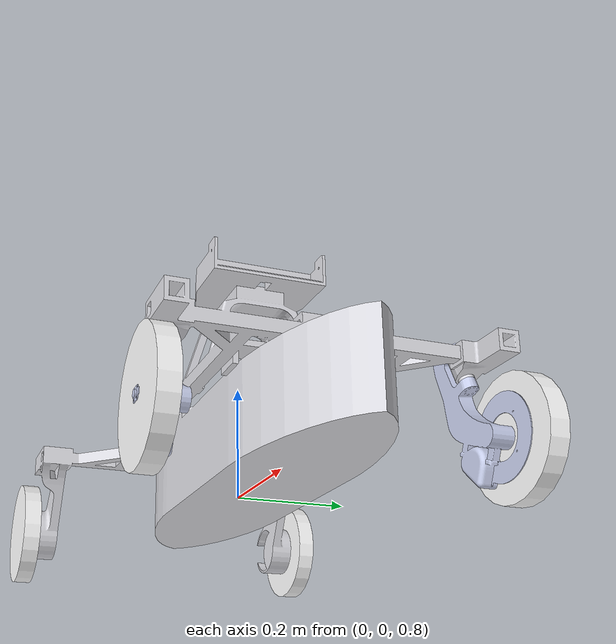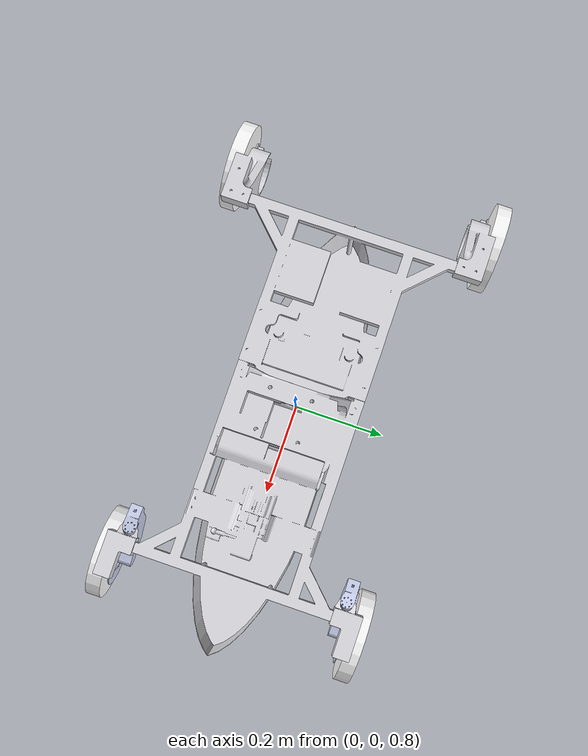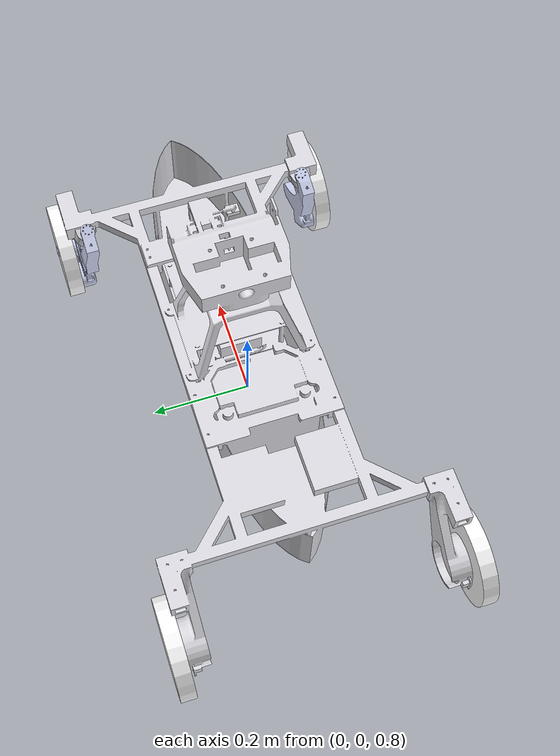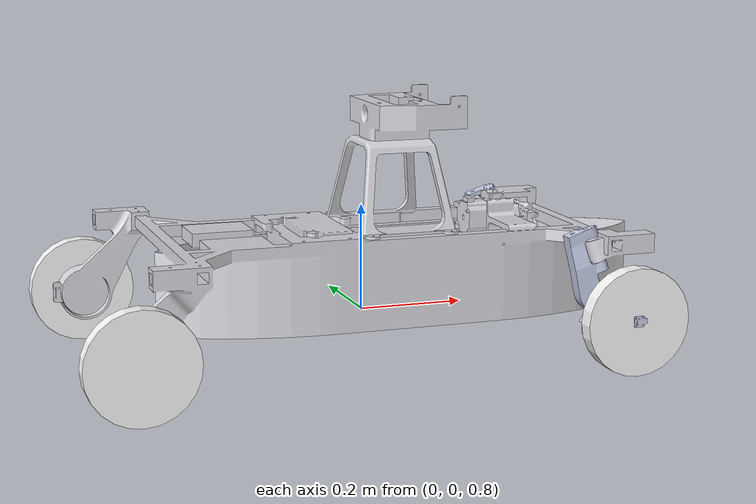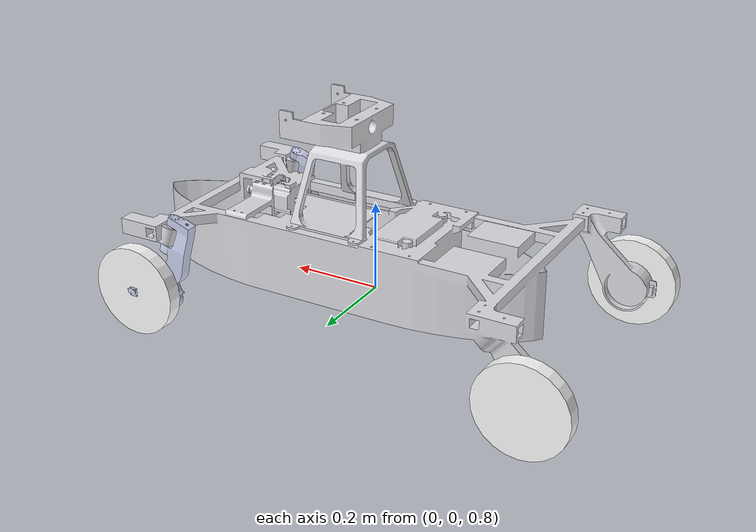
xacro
<?xml version="1.0" encoding="utf-8"?>
<robot xmlns:xacro="http://www.ros.org/wiki/xacro"
  name="asc">
  <gazebo>
    <plugin name="gazebo_ros_control" filename="libgazebo_ros_control.so">
      <robotNamespace>/</robotNamespace>
      <robotSimType>gazebo_ros_control/DefaultRobotHWSim</robotSimType>
      <legacyModeNS>false</legacyModeNS>
    </plugin>
  </gazebo>
  <xacro:include filename="macro_link.urdf.xacro"/>
  <xacro:include filename="macro_wheel.urdf.xacro"/>

  <xacro:property name="wheel_length" value="0.032"/>
  <xacro:property name="wheel_radius" value="0.1"/>
  <xacro:property name="wheel_parent" value="frame_link"/>

  <link name="base_link"/>
  <joint name="base_link_to_frame" type="fixed">
    <origin xyz="0 0 0.7" rpy="0 0 0"/>
    <parent link="base_link"/>
    <child link="frame_link"/>
  </joint>

  <link name="frame_link">
    <inertial>
      <origin xyz="-0.191135074026536 0.00147037627768998 -0.144166350352701" rpy="0 0 0"/>
      <mass value="54.6845003989778"/>
      <inertia ixx="0.830289508168532" ixy="-7.44170925374484E-07" ixz="-0.168031775231281" iyy="1.89493024064907" iyz="3.6787232173372E-07" izz="1.80540947379668"/>
    </inertial>
    <visual>
      <origin xyz="0 0 0" rpy="0 0 0"/>
      <geometry>
        <mesh filename="package://asc_urdf/meshes/base_link.STL" />
      </geometry>
      <material name="">
        <color rgba="0.866666666666667 0.866666666666667 0.890196078431372 1"/>
      </material>
    </visual>
  </link>

  <xacro:asc_wheel_front wheel_prefix="right"
  link_parent="${wheel_parent}" wheel_length="${wheel_length}" wheel_radius="${wheel_radius}" >
    <origin
      xyz="0.35635 -0.23074 0.27672"
      rpy="0.29046 -0.12882 -1.6092" />
    <origin
      xyz="0.024 0.023741 -0.18704"
      rpy="0.13981 0.28531 1.6105" />
    <axis
      xyz="5.3677E-05 1 0.00055924" />
  </xacro:asc_wheel_front>

  <xacro:asc_wheel_front wheel_prefix="left"
  link_parent="${wheel_parent}" wheel_length="${wheel_length}" wheel_radius="${wheel_radius}" >
    <origin
      xyz="0.35635 0.22966 0.27672"
      rpy="0.28907 0.00024223 -1.5707" />
    <origin
      xyz="-0.05 0.023546 -0.17951"
      rpy="1.5963E-05 0.28907 1.5707" />
    <axis
      xyz="5.3677E-05 -1 0.00055924" />
  </xacro:asc_wheel_front>

  <xacro:asc_wheel_rear wheel_prefix="right"
  link_parent="${wheel_parent}" wheel_length="${wheel_length}" wheel_radius="${wheel_radius}" >
  <origin
  xyz="-0.48012 -0.29752 0.27"
  rpy="0.0 0.0 0.0" />
    <origin
      xyz="0.0 0.0 -0.16"
      rpy="0 0 0" />
    <axis
      xyz="0 1 0" />
  </xacro:asc_wheel_rear>

  <xacro:asc_wheel_rear wheel_prefix="left"
  link_parent="${wheel_parent}" wheel_length="${wheel_length}" wheel_radius="${wheel_radius}" >
  <origin
  xyz="-0.48012 0.29752 0.27"
  rpy="0.0 0.0 0.0" />
      <origin
      xyz="0.0 0.0 -0.16"
      rpy="0 0 0" />
    <axis
      xyz="0 1 0" />
  </xacro:asc_wheel_rear>

</robot>

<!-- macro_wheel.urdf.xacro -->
<robot xmlns:xacro="http://www.ros.org/wiki/xacro" name="asc_wheel">
  <xacro:macro name="asc_wheel" params="wheel_prefix link_parent wheel_length wheel_radius *wheel_joint_origin *wheel_joint_axis">

    <link name="${wheel_prefix}_wheel_link">
      <inertial>
        <origin xyz="-1.02140518265514E-14 6.85007606193722E-14 0.00509989314946457" rpy="0 0 0"/>
        <mass value="3.6905479088754"/>
        <inertia ixx="0.117114266308143" ixy="1.38777878078145E-17" ixz="2.37549730750149E-18" iyy="0.117114266308143" iyz="3.40770700491441E-17" izz="0.22795106404409"/>

      </inertial>
      <visual>
        <origin
          xyz="0 0 0"
          rpy="1.57 0 0" />
        <geometry>
          <cylinder length="${wheel_length}" radius="${wheel_radius}"/>
        </geometry>
        <material
          name="">
          <color
            rgba="1 1 1 1" />
        </material>
      </visual>
      <collision>
        <origin
          xyz="0 0 0"
          rpy="1.57 0 0" />
        <geometry>
        <cylinder length="${wheel_length}" radius="${wheel_radius}"/>
        </geometry>
      </collision>
    </link>

    <joint name="${wheel_prefix}_wheel_joint" type="continuous">
      <xacro:insert_block name="wheel_joint_origin"/>
      <parent
        link="${wheel_prefix}_steering_link" />
      <child
        link="${wheel_prefix}_wheel_link" />
      <xacro:insert_block name="wheel_joint_axis"/>

    </joint>

    <transmission name="${wheel_prefix}_wheel_joint_tran">
      <type>transmission_interface/SimpleTransmission</type>
      <joint name="${wheel_prefix}_wheel_joint">
        <hardwareInterface>hardware_interface/VelocityJointInterface</hardwareInterface>
      </joint>
      <actuator name="${wheel_prefix}_wheel_joint_motor">
        <hardwareInterface>hardware_interface/VelocityJointInterface</hardwareInterface>
        <mechanicalReduction>1</mechanicalReduction>
      </actuator>
    </transmission>

    <transmission name="${wheel_prefix}_steering_tran">
      <type>transmission_interface/SimpleTransmission</type>
      <joint name="${wheel_prefix}_steering_joint">
        <hardwareInterface>hardware_interface/PositionJointInterface</hardwareInterface>
      </joint>
      <actuator name="${wheel_prefix}_steering_motor">
        <hardwareInterface>hardware_interface/PositionJointInterface</hardwareInterface>
        <mechanicalReduction>1</mechanicalReduction>
      </actuator>
    </transmission>

  </xacro:macro>

  <xacro:macro name="asc_wheel_front" params="wheel_prefix link_parent wheel_length wheel_radius *steering_joint_pose *wheel_joint_origin *wheel_joint_axis">
    <link name="front_${wheel_prefix}_steering_link">
      <inertial>
        <origin
          xyz="0.0 0.0 0.0"
          rpy="0 0 0" />
          <mass value="5.71439015182903"/>
        <inertia
          ixx="0.00107634033140466"
          ixy="1.51573650824965E-05"
          ixz="-6.94838293881106E-05"
          iyy="0.000914613440717638"
          iyz="0.000195407309247701"
          izz="0.000234021785961031" />
      </inertial>
      <visual>
        <origin
          xyz="0 0 0"
          rpy="0 0 0" />
        <geometry>
          <mesh
            filename="package://asc_urdf/meshes/front_${wheel_prefix}_steering_link.STL" />
        </geometry>
        <material
          name="">
          <color
            rgba="0.792156862745098 0.819607843137255 0.933333333333333 1" />
        </material>
      </visual>
    </link>

  <!-- Add base of wheel macro -->
    <xacro:asc_wheel wheel_prefix="front_${wheel_prefix}"
    link_parent="${link_parent}" wheel_length="${wheel_length}" wheel_radius="${wheel_radius}" >
    <xacro:insert_block name="wheel_joint_origin"/>
    <xacro:insert_block name="wheel_joint_axis"/>
    </xacro:asc_wheel>

    <!-- Add specfic parts for forward wheels-->
    <joint name="front_${wheel_prefix}_steering_joint" type="revolute">
      <xacro:insert_block name="steering_joint_pose"/>
      <parent link="${link_parent}"/>
      <child link="front_${wheel_prefix}_steering_link"/>
      <axis xyz="0 0 1"/>
      <limit lower="-0.8" upper="0.9" effort="100" velocity="100"/>
    </joint>

  </xacro:macro>

  <xacro:macro name="asc_wheel_rear" params="wheel_prefix link_parent wheel_length wheel_radius *steering_joint_pose *wheel_joint_origin *wheel_joint_axis">
    <link name="rear_${wheel_prefix}_steering_link">
        <inertial>
          <origin
            xyz="0.0 0.0 0.0"
            rpy="0 0 0" />
            <mass value="5.71439015182903"/>
          <inertia
            ixx="0.00107634033140466"
            ixy="1.51573650824965E-05"
            ixz="-6.94838293881106E-05"
            iyy="0.000914613440717638"
            iyz="0.000195407309247701"
            izz="0.000234021785961031" />
        </inertial>
      </link>

    <!-- Add base of wheel macro -->
    <xacro:asc_wheel wheel_prefix="rear_${wheel_prefix}"
    link_parent="${link_parent}" wheel_length="${wheel_length}" wheel_radius="${wheel_radius}" >
    <xacro:insert_block name="wheel_joint_origin"/>
    <xacro:insert_block name="wheel_joint_axis"/>
    </xacro:asc_wheel>

    <!-- Add specfic parts for forward wheels-->
    <joint name="rear_${wheel_prefix}_steering_joint" type="revolute">
      <xacro:insert_block name="steering_joint_pose"/>
      <parent link="${link_parent}"/>
      <child link="rear_${wheel_prefix}_steering_link"/>
      <axis xyz="0 0 1"/>
      <limit
      lower="0.0"
      upper="0.0"
      effort="0"
      velocity="0" />
    </joint>

  </xacro:macro>
</robot>
